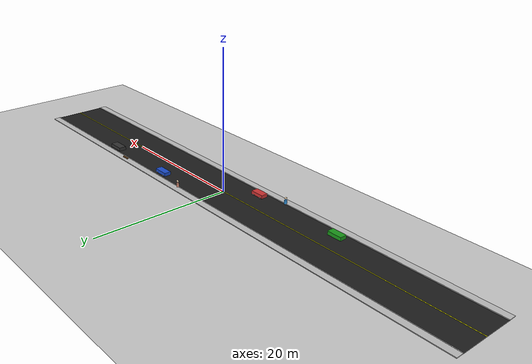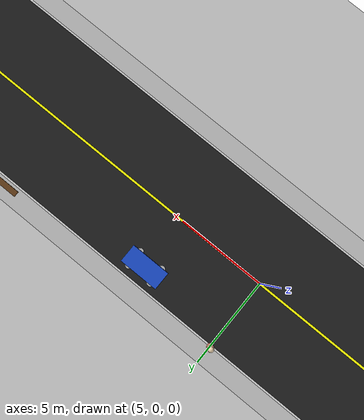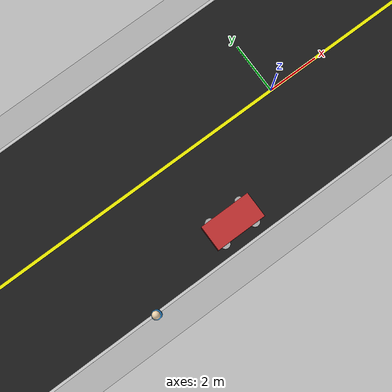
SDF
<?xml version="1.0"?>
<sdf version="1.6">
  <world name="road_world">

    <!-- Lighting / sky -->
    <include>
      <uri>model://sun</uri>
    </include>

    <!-- Ambient background -->
    <scene>
      <ambient>0.6 0.6 0.6 1</ambient>
      <background>0.7 0.8 0.9 1</background>
    </scene>

    <!-- Physics settings -->
    <physics name="default_physics" type="ode">
      <max_step_size>0.001</max_step_size>
      <real_time_factor>1</real_time_factor>
    </physics>

    <!-- Ground plane (for small gaps/visuals) -->
    <include>
      <uri>model://ground_plane</uri>
    </include>

    <!-- Road model: long flat box representing asphalt -->
    <model name="asphalt_road">
      <static>true</static>
      <pose>0 0 0 0 0 0</pose>
      <link name="road_link">
        <pose>0 0 0 0 0 0</pose>

        <collision name="road_collision">
          <geometry>
            <!-- road width 8m, length 80m, thickness 0.05m -->
            <box>
              <size>80 8 0.05</size>
            </box>
          </geometry>
          <surface>
            <contact>
              <ode/>
            </contact>
          </surface>
        </collision>

        <visual name="road_visual">
          <geometry>
            <box>
              <size>80 8 0.05</size>
            </box>
          </geometry>
          <material>
            <!-- dark asphalt-like material -->
            <ambient>0.06 0.06 0.06 1</ambient>
            <diffuse>0.12 0.12 0.12 1</diffuse>
            <specular>0.02 0.02 0.02 1</specular>
            <emissive>0 0 0 1</emissive>
          </material>
          <pose>0 0 0 0 0 0</pose>
        </visual>

      </link>
    </model>

    <!-- Road markings: center line (long thin box) -->
    <model name="center_line">
      <static>true</static>
      <pose>0 0 0.026 0 0 0</pose>
      <link name="line_link">
        <visual name="line_visual">
          <geometry>
            <box><size>80 0.12 0.002</size></box>
          </geometry>
          <material>
            <ambient>1 1 0 1</ambient>
            <diffuse>1 1 0 1</diffuse>
          </material>
        </visual>
      </link>
    </model>

    <!-- Sidewalks: left and right (slightly higher than road) -->
    <model name="left_sidewalk">
      <static>true</static>
      <pose>0 4.5 0.05 0 0 0</pose>
      <link name="ls_link">
        <collision name="ls_collision">
          <geometry><box><size>80 1 0.1</size></box></geometry>
        </collision>
        <visual name="ls_visual">
          <geometry><box><size>80 1 0.1</size></box></geometry>
          <material>
            <ambient>0.7 0.7 0.7 1</ambient>
            <diffuse>0.75 0.75 0.75 1</diffuse>
          </material>
        </visual>
      </link>
    </model>

    <model name="right_sidewalk">
      <static>true</static>
      <pose>0 -4.5 0.05 0 0 0</pose>
      <link name="rs_link">
        <collision name="rs_collision">
          <geometry><box><size>80 1 0.1</size></box></geometry>
        </collision>
        <visual name="rs_visual">
          <geometry><box><size>80 1 0.1</size></box></geometry>
          <material>
            <ambient>0.7 0.7 0.7 1</ambient>
            <diffuse>0.75 0.75 0.75 1</diffuse>
          </material>
        </visual>
      </link>
    </model>

    <!-- Curbs (thin raised edges next to road) -->
    <model name="left_curb">
      <static>true</static>
      <pose>0 3.95 0.08 0 0 0</pose>
      <link name="lc_link">
        <visual name="lc_visual">
          <geometry><box><size>80 0.1 0.06</size></box></geometry>
          <material>
            <diffuse>0.85 0.85 0.85 1</diffuse>
          </material>
        </visual>
      </link>
    </model>

    <model name="right_curb">
      <static>true</static>
      <pose>0 -3.95 0.08 0 0 0</pose>
      <link name="rc_link">
        <visual name="rc_visual">
          <geometry><box><size>80 0.1 0.06</size></box></geometry>
          <material>
            <diffuse>0.85 0.85 0.85 1</diffuse>
          </material>
        </visual>
      </link>
    </model>

    <!-- Simple parked car model generator (box + 4 cylinder wheels). We'll create several instances with different poses. -->
    <!-- Car template (inline as unique models) -->
    <model name="car_left_1">
      <static>true</static>
      <pose>10 3.0 0.28 0 0 0</pose> <!-- parked on left sidewalk edge -->
      <link name="car_body">
        <collision name="car_body_collision">
          <geometry><box><size>2.2 1 0.5</size></box></geometry>
        </collision>
        <visual name="car_body_visual">
          <geometry><box><size>2.2 1 0.5</size></box></geometry>
          <material>
            <ambient>0.1 0.1 0.6 1</ambient>
            <diffuse>0.1 0.3 0.8 1</diffuse>
          </material>
        </visual>
      </link>
      <!-- wheels (visual only) -->
      <link name="wheel_fl">
        <pose>0.7 0.45 -0.2 0 0 0</pose>
        <visual><geometry><cylinder><radius>0.18</radius><length>0.08</length></cylinder></geometry></visual>
      </link>
      <link name="wheel_fr">
        <pose>0.7 -0.45 -0.2 0 0 0</pose>
        <visual><geometry><cylinder><radius>0.18</radius><length>0.08</length></cylinder></geometry></visual>
      </link>
      <link name="wheel_rl">
        <pose>-0.7 0.45 -0.2 0 0 0</pose>
        <visual><geometry><cylinder><radius>0.18</radius><length>0.08</length></cylinder></geometry></visual>
      </link>
      <link name="wheel_rr">
        <pose>-0.7 -0.45 -0.2 0 0 0</pose>
        <visual><geometry><cylinder><radius>0.18</radius><length>0.08</length></cylinder></geometry></visual>
      </link>
    </model>

    <model name="car_right_1">
      <static>true</static>
      <pose>-4 -3.0 0.28 0 0 0</pose> <!-- parked on right sidewalk edge -->
      <link name="car_body_r">
        <collision name="car_body_collision_r">
          <geometry><box><size>2.0 1 0.5</size></box></geometry>
        </collision>
        <visual name="car_body_visual_r">
          <geometry><box><size>2.0 1 0.5</size></box></geometry>
          <material>
            <ambient>0.6 0.1 0.1 1</ambient>
            <diffuse>0.8 0.2 0.2 1</diffuse>
          </material>
        </visual>
      </link>
      <!-- wheels visual -->
      <link name="car_right_w1"><pose>0.65 0.45 -0.2 0 0 0</pose><visual><geometry><cylinder><radius>0.18</radius><length>0.08</length></cylinder></geometry></visual></link>
      <link name="car_right_w2"><pose>0.65 -0.45 -0.2 0 0 0</pose><visual><geometry><cylinder><radius>0.18</radius><length>0.08</length></cylinder></geometry></visual></link>
      <link name="car_right_w3"><pose>-0.65 0.45 -0.2 0 0 0</pose><visual><geometry><cylinder><radius>0.18</radius><length>0.08</length></cylinder></geometry></visual></link>
      <link name="car_right_w4"><pose>-0.65 -0.45 -0.2 0 0 0</pose><visual><geometry><cylinder><radius>0.18</radius><length>0.08</length></cylinder></geometry></visual></link>
    </model>

    <!-- Add more parked cars with different poses/colors -->
    <model name="car_left_2">
      <static>true</static>
      <pose>22 3.1 0.28 0 0 0</pose>
      <link name="body_l2">
        <visual><geometry><box><size>2.4 1.1 0.55</size></box></geometry>
          <material><diffuse>0.2 0.2 0.2 1</diffuse></material>
        </visual>
      </link>
    </model>

    <model name="car_right_2">
      <static>true</static>
      <pose>-18 -2.9 0.28 0 0 0</pose>
      <link name="body_r2">
        <visual><geometry><box><size>2.1 1.0 0.5</size></box></geometry>
          <material><diffuse>0.1 0.6 0.1 1</diffuse></material>
        </visual>
      </link>
    </model>

    <!-- Simple humans: cylinder body + sphere head -->
    <model name="human_left_1">
      <static>true</static>
      <pose>5 4.0 0.6 0 0 0</pose>
      <link name="human_body">
        <visual name="body_vis">
          <geometry><cylinder><radius>0.18</radius><length>0.8</length></cylinder></geometry>
          <material><diffuse>0.9 0.6 0.5 1</diffuse></material>
          <pose>0 0 -0.4 0 0 0</pose>
        </visual>
      </link>
      <link name="human_head">
        <visual name="head_vis">
          <geometry><sphere><radius>0.15</radius></sphere></geometry>
          <material><diffuse>0.95 0.85 0.7 1</diffuse></material>
          <pose>0 0 0.3 0 0 0</pose>
        </visual>
      </link>
    </model>

    <model name="human_right_1">
      <static>true</static>
      <pose>-8 -4.0 0.6 0 0 0</pose>
      <link name="h2_body">
        <visual><geometry><cylinder><radius>0.18</radius><length>0.8</length></cylinder></geometry><material><diffuse>0.2 0.6 0.9 1</diffuse></material><pose>0 0 -0.4 0 0 0</pose></visual>
      </link>
      <link name="h2_head">
        <visual><geometry><sphere><radius>0.15</radius></sphere></geometry><material><diffuse>0.95 0.85 0.7 1</diffuse></material><pose>0 0 0.3 0 0 0</pose></visual>
      </link>
    </model>

    <!-- A simple bench near sidewalk (visual only) -->
    <model name="bench_left">
      <static>true</static>
      <pose>18 4.3 0.12 0 0 0</pose>
      <link name="bench_link">
        <visual>
          <geometry><box><size>1.2 0.3 0.12</size></box></geometry>
          <material><diffuse>0.4 0.25 0.1 1</diffuse></material>
        </visual>
      </link>
    </model>

    <!-- Camera for a good view -->
    <gui fullscreen='0'>
      <camera name='user_camera'>
        <pose> -10 0 12 0.9 0 0 </pose>
        <view_controller>orbit</view_controller>
      </camera>
    </gui>

    <!-- Optional: add simple physics-friendly friction properties for road -->
    <surface>
      <friction>
        <ode>
          <mu>1.0</mu>
          <mu2>1.0</mu2>
        </ode>
      </friction>
    </surface>

  </world>
</sdf>
